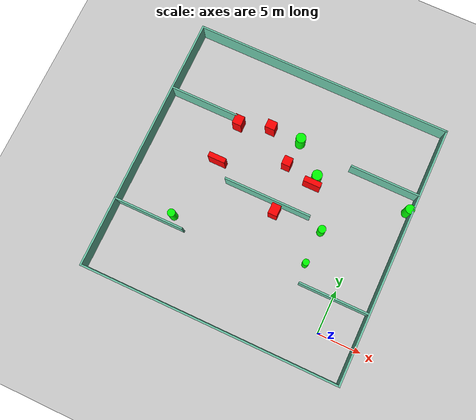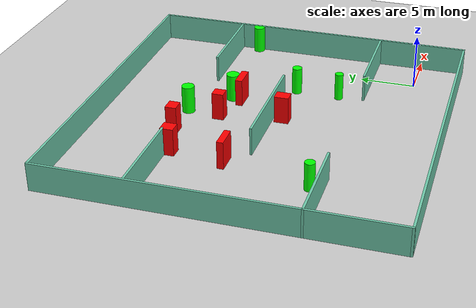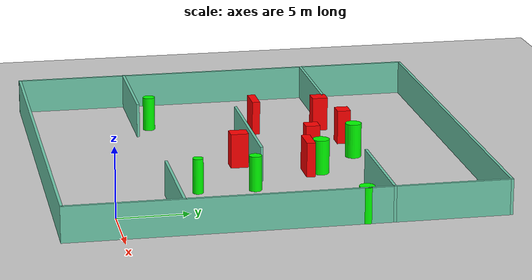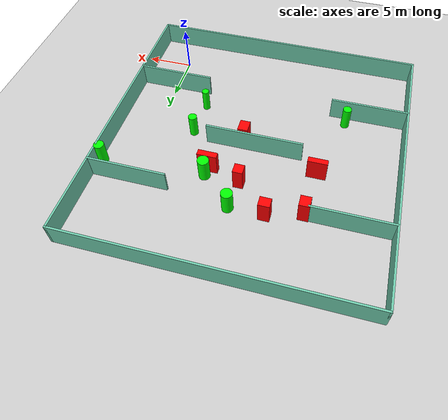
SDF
<sdf version="1.7">
 <world name="default">
  <light name="sun" type="directional">
   <pose>0 0 10 0 -0 0</pose>
   <diffuse>0.8 0.8 0.8 1</diffuse>
   <specular>0.2 0.2 0.2 1</specular>
   <attenuation>
    <range>1000</range>
    <constant>0.9</constant>
    <linear>0.01</linear>
    <quadratic>0.001</quadratic>
   </attenuation>
   <direction>-0.5 0.1 -0.9</direction>
   <spot><inner_angle>0</inner_angle><outer_angle>0</outer_angle><falloff>0</falloff></spot>
  </light>
  <model name="ground_plane">
   <static>1</static>
   <link name="link">
    <collision name="collision">
     <geometry><plane><normal>0 0 1</normal><size>100 100</size></plane></geometry>
     <surface>
      <contact><collide_bitmask>65535</collide_bitmask></contact>
      <friction><ode><mu>100</mu><mu2>50</mu2></ode></friction>
     </surface>
    </collision>
    <visual name="visual">
     <cast_shadows>0</cast_shadows>
     <geometry><plane><normal>0 0 1</normal><size>100 100</size></plane></geometry>
     <material>
      <script><uri>file://media/materials/scripts/gazebo.material</uri><name>Gazebo/Grey</name></script>
     </material>
    </visual>
   </link>
  </model>
  <gravity>0 0 -9.8</gravity>
  <magnetic_field>6e-06 2.3e-05 -4.2e-05</magnetic_field>
  <atmosphere type="adiabatic"/>
  <physics type="ode">
   <max_step_size>0.001</max_step_size>
   <real_time_factor>1</real_time_factor>
   <real_time_update_rate>1000</real_time_update_rate>
  </physics>
  <scene><ambient>0.4 0.4 0.4 1</ambient><background>0.7 0.7 0.7 1</background><shadows>1</shadows></scene>
  <spherical_coordinates>
   <surface_model>EARTH_WGS84</surface_model>
   <latitude_deg>0</latitude_deg>
   <longitude_deg>0</longitude_deg>
   <elevation>0</elevation>
   <heading_deg>0</heading_deg>
  </spherical_coordinates>
  <model name="my_base_walls">
   <link name="Wall_10">
    <collision name="Wall_10_Collision">
     <geometry><box><size>8.2 0.2 2.5</size></box></geometry>
     <pose>0 0 1.25 0 -0 0</pose>
    </collision>
    <visual name="Wall_10_Visual">
     <pose>0 0 1.25 0 -0 0</pose>
     <geometry><box><size>8.2 0.2 2.5</size></box></geometry>
     <material>
      <script><uri>file://media/materials/scripts/gazebo.material</uri><name>Gazebo/Grey</name></script>
      <ambient>0.435294 0.796078 0.67451 1</ambient>
     </material>
     <meta><layer>0</layer></meta>
    </visual>
    <pose>-11 -7 0 0 -0 0</pose>
   </link>
   <link name="Wall_12">
    <collision name="Wall_12_Collision">
     <geometry><box><size>8.2 0.2 2.5</size></box></geometry>
     <pose>0 0 1.25 0 -0 0</pose>
    </collision>
    <visual name="Wall_12_Visual">
     <pose>0 0 1.25 0 -0 0</pose>
     <geometry><box><size>8.2 0.2 2.5</size></box></geometry>
     <material>
      <script><uri>file://media/materials/scripts/gazebo.material</uri><name>Gazebo/Grey</name></script>
      <ambient>0.435294 0.796078 0.67451 1</ambient>
     </material>
     <meta><layer>0</layer></meta>
    </visual>
    <pose>-11 7 0 0 -0 0</pose>
   </link>
   <link name="Wall_14">
    <collision name="Wall_14_Collision">
     <geometry><box><size>8.2 0.2 2.5</size></box></geometry>
     <pose>0 0 1.25 0 -0 0</pose>
    </collision>
    <visual name="Wall_14_Visual">
     <pose>0 0 1.25 0 -0 0</pose>
     <geometry><box><size>8.2 0.2 2.5</size></box></geometry>
     <material>
      <script><uri>file://media/materials/scripts/gazebo.material</uri><name>Gazebo/Grey</name></script>
      <ambient>0.435294 0.796078 0.67451 1</ambient>
     </material>
     <meta><layer>0</layer></meta>
    </visual>
    <pose>11 7 0 0 -0 3.14159</pose>
   </link>
   <link name="Wall_16">
    <collision name="Wall_16_Collision">
     <geometry><box><size>10.2 0.2 2.5</size></box></geometry>
     <pose>0 0 1.25 0 -0 0</pose>
    </collision>
    <visual name="Wall_16_Visual">
     <pose>0 0 1.25 0 -0 0</pose>
     <geometry><box><size>10.2 0.2 2.5</size></box></geometry>
     <material>
      <script><uri>file://media/materials/scripts/gazebo.material</uri><name>Gazebo/Grey</name></script>
      <ambient>0.435294 0.796078 0.67451 1</ambient>
     </material>
     <meta><layer>0</layer></meta>
    </visual>
    <pose>0 0 0 0 -0 3.14159</pose>
   </link>
   <link name="Wall_2">
    <collision name="Wall_2_Collision">
     <geometry><box><size>30.2 0.2 2.5</size></box></geometry>
     <pose>0 0 1.25 0 -0 0</pose>
    </collision>
    <visual name="Wall_2_Visual">
     <pose>0 0 1.25 0 -0 0</pose>
     <geometry><box><size>30.2 0.2 2.5</size></box></geometry>
     <material>
      <script><uri>file://media/materials/scripts/gazebo.material</uri><name>Gazebo/Grey</name></script>
      <ambient>0.435294 0.796078 0.67451 1</ambient>
     </material>
     <meta><layer>0</layer></meta>
    </visual>
    <pose>0 -15 0 0 -0 3.14159</pose>
   </link>
   <link name="Wall_3">
    <collision name="Wall_3_Collision">
     <geometry><box><size>30.2 0.2 2.5</size></box></geometry>
     <pose>0 0 1.25 0 -0 0</pose>
    </collision>
    <visual name="Wall_3_Visual">
     <pose>0 0 1.25 0 -0 0</pose>
     <geometry><box><size>30.2 0.2 2.5</size></box></geometry>
     <material>
      <script><uri>file://media/materials/scripts/gazebo.material</uri><name>Gazebo/Grey</name></script>
      <ambient>0.435294 0.796078 0.67451 1</ambient>
     </material>
     <meta><layer>0</layer></meta>
    </visual>
    <pose>-15 0 0 0 -0 1.5708</pose>
   </link>
   <link name="Wall_4">
    <collision name="Wall_4_Collision">
     <geometry><box><size>30.2 0.2 2.5</size></box></geometry>
     <pose>0 0 1.25 0 -0 0</pose>
    </collision>
    <visual name="Wall_4_Visual">
     <pose>0 0 1.25 0 -0 0</pose>
     <geometry><box><size>30.2 0.2 2.5</size></box></geometry>
     <material>
      <script><uri>file://media/materials/scripts/gazebo.material</uri><name>Gazebo/Grey</name></script>
      <ambient>0.435294 0.796078 0.67451 1</ambient>
     </material>
     <meta><layer>0</layer></meta>
    </visual>
    <pose>0 15 0 0 -0 0</pose>
   </link>
   <link name="Wall_6">
    <collision name="Wall_6_Collision">
     <geometry><box><size>30.2 0.2 2.5</size></box></geometry>
     <pose>0 0 1.25 0 -0 0</pose>
    </collision>
    <visual name="Wall_6_Visual">
     <pose>0 0 1.25 0 -0 0</pose>
     <geometry><box><size>30.2 0.2 2.5</size></box></geometry>
     <material>
      <script><uri>file://media/materials/scripts/gazebo.material</uri><name>Gazebo/Grey</name></script>
      <ambient>0.435294 0.796078 0.67451 1</ambient>
     </material>
     <meta><layer>0</layer></meta>
    </visual>
    <pose>15 0 0 0 -0 1.5708</pose>
   </link>
   <link name="Wall_8">
    <collision name="Wall_8_Collision">
     <geometry><box><size>8.2 0.2 2.5</size></box></geometry>
     <pose>0 0 1.25 0 -0 0</pose>
    </collision>
    <visual name="Wall_8_Visual">
     <pose>0 0 1.25 0 -0 0</pose>
     <geometry><box><size>8.2 0.2 2.5</size></box></geometry>
     <material>
      <script><uri>file://media/materials/scripts/gazebo.material</uri><name>Gazebo/Grey</name></script>
      <ambient>0.435294 0.796078 0.67451 1</ambient>
     </material>
     <meta><layer>0</layer></meta>
    </visual>
    <pose>11 -7 0 0 -0 3.14159</pose>
   </link>
   <static>1</static>
   <pose>-11 11 0 0 -0 0</pose>
  </model>
  <model name="cylinder1">
   <static>1</static>
   <link name="link">
    <inertial>
     <mass>1</mass>
     <inertia><ixx>0.5</ixx><ixy>0</ixy><ixz>0</ixz><iyy>0.5</iyy><iyz>0</iyz><izz>1</izz></inertia>
    </inertial>
    <collision name="collision">
     <geometry><cylinder><radius>0.44696599365899226</radius><length>2.5</length></cylinder></geometry>
    </collision>
    <visual name="visual">
     <geometry><cylinder><radius>0.44696599365899226</radius><length>2.5</length></cylinder></geometry>
     <material>
      <ambient>0 1 0 1</ambient>
      <diffuse>0 1 0 1</diffuse>
      <specular>0.1 0.1 0.1 1</specular>
      <emissive>0 0 0 0</emissive>
     </material>
    </visual>
   </link>
   <pose>-4.167203084558395 10.218537703220614 1.25 0 0 0</pose>
  </model>
  <model name="cylinder2">
   <static>1</static>
   <link name="link">
    <inertial>
     <mass>1</mass>
     <inertia><ixx>0.5</ixx><ixy>0</ixy><ixz>0</ixz><iyy>0.5</iyy><iyz>0</iyz><izz>1</izz></inertia>
    </inertial>
    <collision name="collision">
     <geometry><cylinder><radius>0.372300818293984</radius><length>2.5</length></cylinder></geometry>
    </collision>
    <visual name="visual">
     <geometry><cylinder><radius>0.372300818293984</radius><length>2.5</length></cylinder></geometry>
     <material>
      <ambient>0 1 0 1</ambient>
      <diffuse>0 1 0 1</diffuse>
      <specular>0.1 0.1 0.1 1</specular>
      <emissive>0 0 0 0</emissive>
     </material>
    </visual>
   </link>
   <pose>-4.291527150481791 6.239896591508728 1.25 0 0 0</pose>
  </model>
  <model name="cylinder3">
   <static>1</static>
   <link name="link">
    <inertial>
     <mass>1</mass>
     <inertia><ixx>0.5</ixx><ixy>0</ixy><ixz>0</ixz><iyy>0.5</iyy><iyz>0</iyz><izz>1</izz></inertia>
    </inertial>
    <collision name="collision">
     <geometry><cylinder><radius>0.44295580708320653</radius><length>2.5</length></cylinder></geometry>
    </collision>
    <visual name="visual">
     <geometry><cylinder><radius>0.44295580708320653</radius><length>2.5</length></cylinder></geometry>
     <material>
      <ambient>0 1 0 1</ambient>
      <diffuse>0 1 0 1</diffuse>
      <specular>0.1 0.1 0.1 1</specular>
      <emissive>0 0 0 0</emissive>
     </material>
    </visual>
   </link>
   <pose>-19.71507113140543 5.061512737832713 1.25 0 0 0</pose>
  </model>
  <model name="cylinder4">
   <static>1</static>
   <link name="link">
    <inertial>
     <mass>1</mass>
     <inertia><ixx>0.5</ixx><ixy>0</ixy><ixz>0</ixz><iyy>0.5</iyy><iyz>0</iyz><izz>1</izz></inertia>
    </inertial>
    <collision name="collision">
     <geometry><cylinder><radius>0.5783536434140469</radius><length>2.5</length></cylinder></geometry>
    </collision>
    <visual name="visual">
     <geometry><cylinder><radius>0.5783536434140469</radius><length>2.5</length></cylinder></geometry>
     <material>
      <ambient>0 1 0 1</ambient>
      <diffuse>0 1 0 1</diffuse>
      <specular>0.1 0.1 0.1 1</specular>
      <emissive>0 0 0 0</emissive>
     </material>
    </visual>
   </link>
   <pose>-10.383075161907085 18.58887779923841 1.25 0 0 0</pose>
  </model>
  <model name="cylinder5">
   <static>1</static>
   <link name="link">
    <inertial>
     <mass>1</mass>
     <inertia><ixx>0.5</ixx><ixy>0</ixy><ixz>0</ixz><iyy>0.5</iyy><iyz>0</iyz><izz>1</izz></inertia>
    </inertial>
    <collision name="collision">
     <geometry><cylinder><radius>0.5894017964163705</radius><length>2.5</length></cylinder></geometry>
    </collision>
    <visual name="visual">
     <geometry><cylinder><radius>0.5894017964163705</radius><length>2.5</length></cylinder></geometry>
     <material>
      <ambient>0 1 0 1</ambient>
      <diffuse>0 1 0 1</diffuse>
      <specular>0.1 0.1 0.1 1</specular>
      <emissive>0 0 0 0</emissive>
     </material>
    </visual>
   </link>
   <pose>-7.060203757802409 15.4764304846578 1.25 0 0 0</pose>
  </model>
  <model name="cylinder6">
   <static>1</static>
   <link name="link">
    <inertial>
     <mass>1</mass>
     <inertia><ixx>0.5</ixx><ixy>0</ixy><ixz>0</ixz><iyy>0.5</iyy><iyz>0</iyz><izz>1</izz></inertia>
    </inertial>
    <collision name="collision">
     <geometry><cylinder><radius>0.5272837633539875</radius><length>2.5</length></cylinder></geometry>
    </collision>
    <visual name="visual">
     <geometry><cylinder><radius>0.5272837633539875</radius><length>2.5</length></cylinder></geometry>
     <material>
      <ambient>0 1 0 1</ambient>
      <diffuse>0 1 0 1</diffuse>
      <specular>0.1 0.1 0.1 1</specular>
      <emissive>0 0 0 0</emissive>
     </material>
    </visual>
   </link>
   <pose>3.6342699848102953 16.192253676183576 1.25 0 0 0</pose>
  </model>
  <model name="box1">
   <static>1</static>
   <link name="link">
    <inertial>
     <mass>1</mass>
     <inertia><ixx>0.083</ixx><ixy>0</ixy><ixz>0</ixz><iyy>0.083</iyy><iyz>0</iyz><izz>0.083</izz></inertia>
    </inertial>
    <collision name="collision">
     <geometry><box><size>2.0164571566851963 0.6213248202893942 2.5</size></box></geometry>
    </collision>
    <visual name="visual">
     <geometry><box><size>2.0164571566851963 0.6213248202893942 2.5</size></box></geometry>
     <material>
      <ambient>1 0 0 1</ambient>
      <diffuse>1 0 0 1</diffuse>
      <specular>0.1 0.1 0.1 1</specular>
      <emissive>0 0 0 0</emissive>
     </material>
    </visual>
    <sensor name="my_contact" type="contact">
     <contact><collision>box_collision</collision><topic>__default_topic__</topic></contact>
    </sensor>
   </link>
   <pose>-7.203640473546859 14.583082662926241 1.25 0 0 0</pose>
  </model>
  <model name="box2">
   <static>1</static>
   <link name="link">
    <inertial>
     <mass>1</mass>
     <inertia><ixx>0.083</ixx><ixy>0</ixy><ixz>0</ixz><iyy>0.083</iyy><iyz>0</iyz><izz>0.083</izz></inertia>
    </inertial>
    <collision name="collision">
     <geometry><box><size>1.075381328349592 1.1392220953728824 2.5</size></box></geometry>
    </collision>
    <visual name="visual">
     <geometry><box><size>1.075381328349592 1.1392220953728824 2.5</size></box></geometry>
     <material>
      <ambient>1 0 0 1</ambient>
      <diffuse>1 0 0 1</diffuse>
      <specular>0.1 0.1 0.1 1</specular>
      <emissive>0 0 0 0</emissive>
     </material>
    </visual>
    <sensor name="my_contact" type="contact">
     <contact><collision>box_collision</collision><topic>__default_topic__</topic></contact>
    </sensor>
   </link>
   <pose>-17.58521988636976 17.609909493868464 1.25 0 0 0</pose>
  </model>
  <model name="box3">
   <static>1</static>
   <link name="link">
    <inertial>
     <mass>1</mass>
     <inertia><ixx>0.083</ixx><ixy>0</ixy><ixz>0</ixz><iyy>0.083</iyy><iyz>0</iyz><izz>0.083</izz></inertia>
    </inertial>
    <collision name="collision">
     <geometry><box><size>1.0489205086937192 1.2810705872228596 2.5</size></box></geometry>
    </collision>
    <visual name="visual">
     <geometry><box><size>1.0489205086937192 1.2810705872228596 2.5</size></box></geometry>
     <material>
      <ambient>1 0 0 1</ambient>
      <diffuse>1 0 0 1</diffuse>
      <specular>0.1 0.1 0.1 1</specular>
      <emissive>0 0 0 0</emissive>
     </material>
    </visual>
    <sensor name="my_contact" type="contact">
     <contact><collision>box_collision</collision><topic>__default_topic__</topic></contact>
    </sensor>
   </link>
   <pose>-9.711113756659948 10.05582600916133 1.25 0 0 0</pose>
  </model>
  <model name="box4">
   <static>1</static>
   <link name="link">
    <inertial>
     <mass>1</mass>
     <inertia><ixx>0.083</ixx><ixy>0</ixy><ixz>0</ixz><iyy>0.083</iyy><iyz>0</iyz><izz>0.083</izz></inertia>
    </inertial>
    <collision name="collision">
     <geometry><box><size>1.142739621248028 0.981371781949401 2.5</size></box></geometry>
    </collision>
    <visual name="visual">
     <geometry><box><size>1.142739621248028 0.981371781949401 2.5</size></box></geometry>
     <material>
      <ambient>1 0 0 1</ambient>
      <diffuse>1 0 0 1</diffuse>
      <specular>0.1 0.1 0.1 1</specular>
      <emissive>0 0 0 0</emissive>
     </material>
    </visual>
    <sensor name="my_contact" type="contact">
     <contact><collision>box_collision</collision><topic>__default_topic__</topic></contact>
    </sensor>
   </link>
   <pose>-14.020835602330827 18.6253673238439 1.25 0 0 0</pose>
  </model>
  <model name="box5">
   <static>1</static>
   <link name="link">
    <inertial>
     <mass>1</mass>
     <inertia><ixx>0.083</ixx><ixy>0</ixy><ixz>0</ixz><iyy>0.083</iyy><iyz>0</iyz><izz>0.083</izz></inertia>
    </inertial>
    <collision name="collision">
     <geometry><box><size>2.0093994235799264 0.568243605399753 2.5</size></box></geometry>
    </collision>
    <visual name="visual">
     <geometry><box><size>2.0093994235799264 0.568243605399753 2.5</size></box></geometry>
     <material>
      <ambient>1 0 0 1</ambient>
      <diffuse>1 0 0 1</diffuse>
      <specular>0.1 0.1 0.1 1</specular>
      <emissive>0 0 0 0</emissive>
     </material>
    </visual>
    <sensor name="my_contact" type="contact">
     <contact><collision>box_collision</collision><topic>__default_topic__</topic></contact>
    </sensor>
   </link>
   <pose>-17.89684917170272 12.715576220108925 1.25 0 0 0</pose>
  </model>
  <model name="box6">
   <static>1</static>
   <link name="link">
    <inertial>
     <mass>1</mass>
     <inertia><ixx>0.083</ixx><ixy>0</ixy><ixz>0</ixz><iyy>0.083</iyy><iyz>0</iyz><izz>0.083</izz></inertia>
    </inertial>
    <collision name="collision">
     <geometry><box><size>1.0082621539218217 1.0348819226973036 2.5</size></box></geometry>
    </collision>
    <visual name="visual">
     <geometry><box><size>1.0082621539218217 1.0348819226973036 2.5</size></box></geometry>
     <material>
      <ambient>1 0 0 1</ambient>
      <diffuse>1 0 0 1</diffuse>
      <specular>0.1 0.1 0.1 1</specular>
      <emissive>0 0 0 0</emissive>
     </material>
    </visual>
    <sensor name="my_contact" type="contact">
     <contact><collision>box_collision</collision><topic>__default_topic__</topic></contact>
    </sensor>
   </link>
   <pose>-10.681222176711481 15.57072832826806 1.25 0 0 0</pose>
  </model>
 </world>
</sdf>
